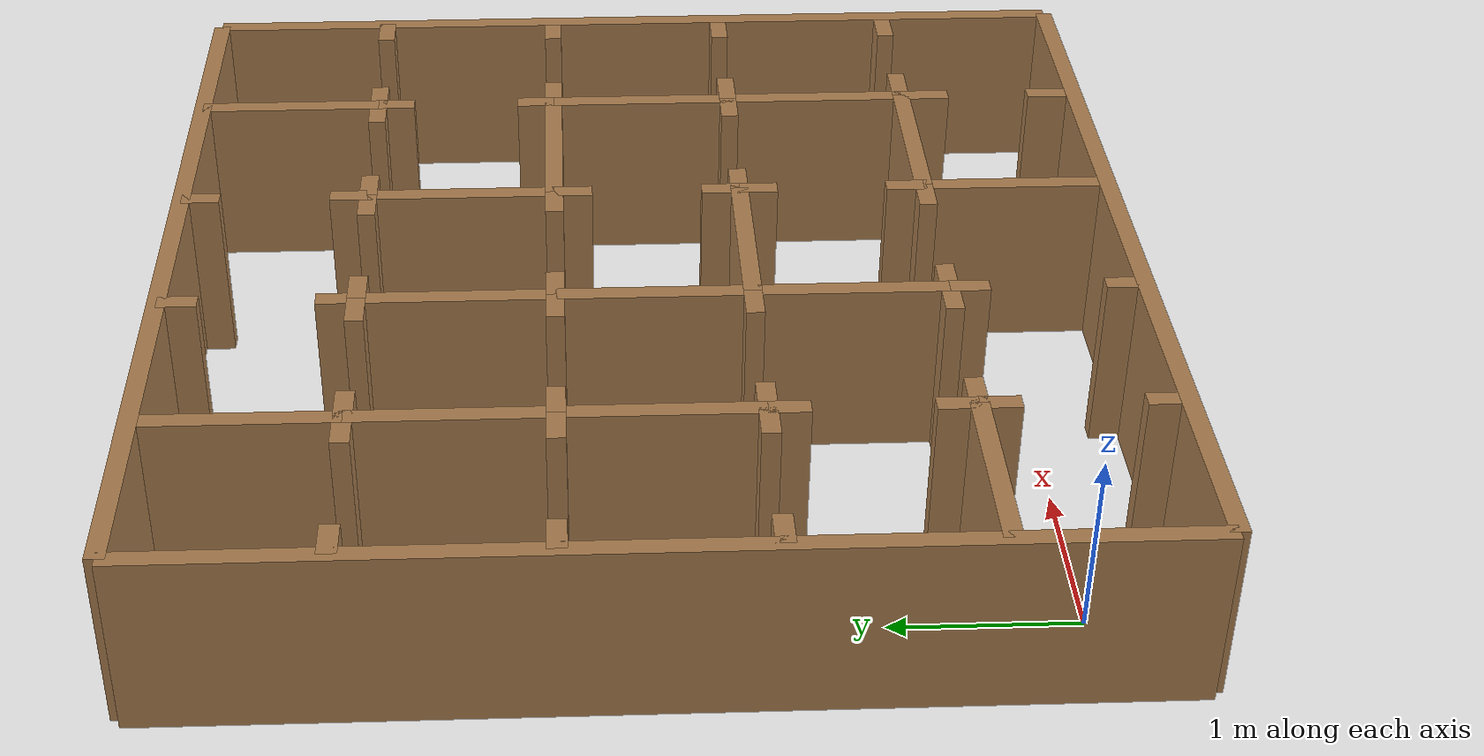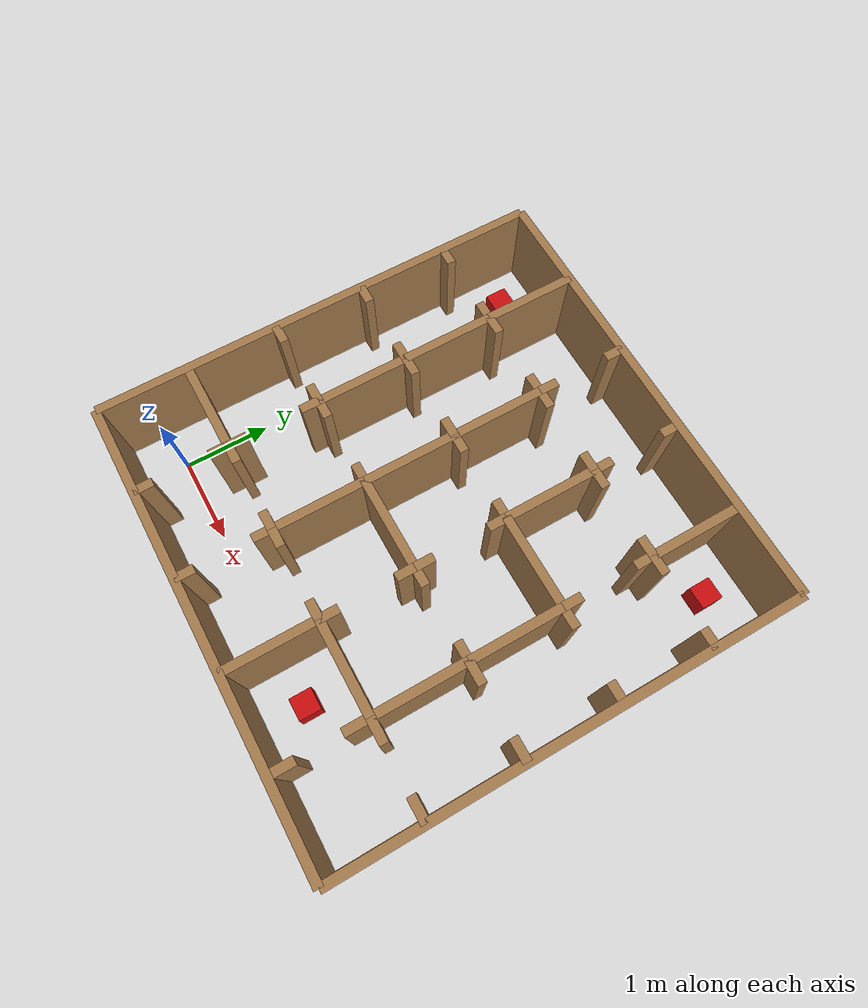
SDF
<sdf version="1.5">
 <world name="tars_borde_angostos">
  <physics type="ode">
   <max_step_size>0.001</max_step_size>
   <real_time_factor>1</real_time_factor>
   <real_time_update_rate>1000</real_time_update_rate>
   <gravity>0 0 -9.8</gravity>
  </physics>
  <plugin filename="gz-sim-physics-system" name="gz::sim::systems::Physics"/>
  <plugin filename="gz-sim-user-commands-system" name="gz::sim::systems::UserCommands"/>
  <plugin filename="gz-sim-scene-broadcaster-system" name="gz::sim::systems::SceneBroadcaster"/>
  <plugin filename="gz-sim-contact-system" name="gz::sim::systems::Contact"/>
  <plugin filename="gz-sim-sensors-system" name="gz::sim::systems::Sensors">
   <render_engine>ogre2</render_engine>
  </plugin>
  <plugin filename="gz-sim-imu-system" name="gz::sim::systems::Imu"/>
  <scene>
   <shadows>false</shadows>
   <ambient>0.2 0.2 0.2 1</ambient>
   <background>1 1 1 1</background>
   <grid>false</grid>
   <origin_visual>false</origin_visual>
  </scene>
  <include><uri>model://sun</uri></include>
  <light name="camera_spot_1_light" type="spot">
   <pose>-6 4 4 0 -1 -0.8</pose>
   <diffuse>0.5 0.5 0.5 1</diffuse>
   <specular>0.1 0.1 0.1 1</specular>
   <direction>0 0 -1</direction>
   <attenuation>
    <range>20</range>
    <constant>0.2</constant>
    <linear>0.01</linear>
    <quadratic>0.001</quadratic>
   </attenuation>
   <cast_shadows>0</cast_shadows>
   <spot><inner_angle>0.6</inner_angle><outer_angle>1</outer_angle><falloff>1</falloff></spot>
  </light>
  <light name="camera_spot_2_light" type="spot">
   <pose>5 -3 4 0 0.8 -0.6</pose>
   <diffuse>0.5 0.5 0.5 1</diffuse>
   <specular>0.1 0.1 0.1 1</specular>
   <direction>0 0 -1</direction>
   <attenuation>
    <range>20</range>
    <constant>0.3</constant>
    <linear>0.01</linear>
    <quadratic>0.001</quadratic>
   </attenuation>
   <cast_shadows>0</cast_shadows>
   <spot><inner_angle>0.6</inner_angle><outer_angle>1</outer_angle><falloff>1</falloff></spot>
  </light>
  <model name="paredes_borde">
   <static>true</static>
   <link name="pared_1">
    <pose>2.1 -0.525 0.5 0 0 0</pose>
    <collision name="collision"><geometry><box><size>5.250000000000001 0.1 1.0</size></box></geometry></collision>
    <visual name="visual">
     <geometry><box><size>5.250000000000001 0.1 1.0</size></box></geometry>
     <material><ambient>0.65 0.48 0.30 1</ambient><diffuse>0.65 0.48 0.30 1</diffuse></material>
    </visual>
   </link>
   <link name="pared_2">
    <pose>4.7250000000000005 2.1 0.5 0 0 0</pose>
    <collision name="collision"><geometry><box><size>0.1 5.250000000000001 1.0</size></box></geometry></collision>
    <visual name="visual">
     <geometry><box><size>0.1 5.250000000000001 1.0</size></box></geometry>
     <material><ambient>0.65 0.48 0.30 1</ambient><diffuse>0.65 0.48 0.30 1</diffuse></material>
    </visual>
   </link>
   <link name="pared_3">
    <pose>2.1 4.7250000000000005 0.5 0 0 0</pose>
    <collision name="collision"><geometry><box><size>5.250000000000001 0.1 1.0</size></box></geometry></collision>
    <visual name="visual">
     <geometry><box><size>5.250000000000001 0.1 1.0</size></box></geometry>
     <material><ambient>0.65 0.48 0.30 1</ambient><diffuse>0.65 0.48 0.30 1</diffuse></material>
    </visual>
   </link>
   <link name="pared_4">
    <pose>-0.525 2.1 0.5 0 0 0</pose>
    <collision name="collision"><geometry><box><size>0.1 5.250000000000001 1.0</size></box></geometry></collision>
    <visual name="visual">
     <geometry><box><size>0.1 5.250000000000001 1.0</size></box></geometry>
     <material><ambient>0.65 0.48 0.30 1</ambient><diffuse>0.65 0.48 0.30 1</diffuse></material>
    </visual>
   </link>
   <link name="pared_5">
    <pose>0.525 -0.4175 0.5 0 0 0</pose>
    <collision name="collision">
     <geometry><box><size>0.1 0.21500000000000002 1.0</size></box></geometry>
    </collision>
    <visual name="visual">
     <geometry><box><size>0.1 0.21500000000000002 1.0</size></box></geometry>
     <material><ambient>0.65 0.48 0.30 1</ambient><diffuse>0.65 0.48 0.30 1</diffuse></material>
    </visual>
   </link>
   <link name="pared_6">
    <pose>0.525 0.4175 0.5 0 0 0</pose>
    <collision name="collision">
     <geometry><box><size>0.1 0.21500000000000002 1.0</size></box></geometry>
    </collision>
    <visual name="visual">
     <geometry><box><size>0.1 0.21500000000000002 1.0</size></box></geometry>
     <material><ambient>0.65 0.48 0.30 1</ambient><diffuse>0.65 0.48 0.30 1</diffuse></material>
    </visual>
   </link>
   <link name="pared_7">
    <pose>0.0 0.525 0.5 0 0 0</pose>
    <collision name="collision"><geometry><box><size>1.05 0.1 1.0</size></box></geometry></collision>
    <visual name="visual">
     <geometry><box><size>1.05 0.1 1.0</size></box></geometry>
     <material><ambient>0.65 0.48 0.30 1</ambient><diffuse>0.65 0.48 0.30 1</diffuse></material>
    </visual>
   </link>
   <link name="pared_8">
    <pose>0.525 0.6325000000000001 0.5 0 0 0</pose>
    <collision name="collision">
     <geometry><box><size>0.1 0.21499999999999997 1.0</size></box></geometry>
    </collision>
    <visual name="visual">
     <geometry><box><size>0.1 0.21499999999999997 1.0</size></box></geometry>
     <material><ambient>0.65 0.48 0.30 1</ambient><diffuse>0.65 0.48 0.30 1</diffuse></material>
    </visual>
   </link>
   <link name="pared_9">
    <pose>0.525 1.4675000000000002 0.5 0 0 0</pose>
    <collision name="collision">
     <geometry><box><size>0.1 0.21500000000000008 1.0</size></box></geometry>
    </collision>
    <visual name="visual">
     <geometry><box><size>0.1 0.21500000000000008 1.0</size></box></geometry>
     <material><ambient>0.65 0.48 0.30 1</ambient><diffuse>0.65 0.48 0.30 1</diffuse></material>
    </visual>
   </link>
   <link name="pared_10">
    <pose>-0.4175 1.5750000000000002 0.5 0 0 0</pose>
    <collision name="collision">
     <geometry><box><size>0.21500000000000002 0.1 1.0</size></box></geometry>
    </collision>
    <visual name="visual">
     <geometry><box><size>0.21500000000000002 0.1 1.0</size></box></geometry>
     <material><ambient>0.65 0.48 0.30 1</ambient><diffuse>0.65 0.48 0.30 1</diffuse></material>
    </visual>
   </link>
   <link name="pared_11">
    <pose>0.4175 1.5750000000000002 0.5 0 0 0</pose>
    <collision name="collision">
     <geometry><box><size>0.21500000000000002 0.1 1.0</size></box></geometry>
    </collision>
    <visual name="visual">
     <geometry><box><size>0.21500000000000002 0.1 1.0</size></box></geometry>
     <material><ambient>0.65 0.48 0.30 1</ambient><diffuse>0.65 0.48 0.30 1</diffuse></material>
    </visual>
   </link>
   <link name="pared_12">
    <pose>0.525 2.1 0.5 0 0 0</pose>
    <collision name="collision">
     <geometry><box><size>0.1 1.0499999999999998 1.0</size></box></geometry>
    </collision>
    <visual name="visual">
     <geometry><box><size>0.1 1.0499999999999998 1.0</size></box></geometry>
     <material><ambient>0.65 0.48 0.30 1</ambient><diffuse>0.65 0.48 0.30 1</diffuse></material>
    </visual>
   </link>
   <link name="pared_13">
    <pose>-0.4175 2.625 0.5 0 0 0</pose>
    <collision name="collision">
     <geometry><box><size>0.21500000000000002 0.1 1.0</size></box></geometry>
    </collision>
    <visual name="visual">
     <geometry><box><size>0.21500000000000002 0.1 1.0</size></box></geometry>
     <material><ambient>0.65 0.48 0.30 1</ambient><diffuse>0.65 0.48 0.30 1</diffuse></material>
    </visual>
   </link>
   <link name="pared_14">
    <pose>0.4175 2.625 0.5 0 0 0</pose>
    <collision name="collision">
     <geometry><box><size>0.21500000000000002 0.1 1.0</size></box></geometry>
    </collision>
    <visual name="visual">
     <geometry><box><size>0.21500000000000002 0.1 1.0</size></box></geometry>
     <material><ambient>0.65 0.48 0.30 1</ambient><diffuse>0.65 0.48 0.30 1</diffuse></material>
    </visual>
   </link>
   <link name="pared_15">
    <pose>0.525 3.1500000000000004 0.5 0 0 0</pose>
    <collision name="collision">
     <geometry><box><size>0.1 1.0499999999999998 1.0</size></box></geometry>
    </collision>
    <visual name="visual">
     <geometry><box><size>0.1 1.0499999999999998 1.0</size></box></geometry>
     <material><ambient>0.65 0.48 0.30 1</ambient><diffuse>0.65 0.48 0.30 1</diffuse></material>
    </visual>
   </link>
   <link name="pared_16">
    <pose>-0.4175 3.6750000000000003 0.5 0 0 0</pose>
    <collision name="collision">
     <geometry><box><size>0.21500000000000002 0.1 1.0</size></box></geometry>
    </collision>
    <visual name="visual">
     <geometry><box><size>0.21500000000000002 0.1 1.0</size></box></geometry>
     <material><ambient>0.65 0.48 0.30 1</ambient><diffuse>0.65 0.48 0.30 1</diffuse></material>
    </visual>
   </link>
   <link name="pared_17">
    <pose>0.4175 3.6750000000000003 0.5 0 0 0</pose>
    <collision name="collision">
     <geometry><box><size>0.21500000000000002 0.1 1.0</size></box></geometry>
    </collision>
    <visual name="visual">
     <geometry><box><size>0.21500000000000002 0.1 1.0</size></box></geometry>
     <material><ambient>0.65 0.48 0.30 1</ambient><diffuse>0.65 0.48 0.30 1</diffuse></material>
    </visual>
   </link>
   <link name="pared_18">
    <pose>0.525 4.2 0.5 0 0 0</pose>
    <collision name="collision">
     <geometry><box><size>0.1 1.0500000000000003 1.0</size></box></geometry>
    </collision>
    <visual name="visual">
     <geometry><box><size>0.1 1.0500000000000003 1.0</size></box></geometry>
     <material><ambient>0.65 0.48 0.30 1</ambient><diffuse>0.65 0.48 0.30 1</diffuse></material>
    </visual>
   </link>
   <link name="pared_19">
    <pose>1.5750000000000002 -0.4175 0.5 0 0 0</pose>
    <collision name="collision">
     <geometry><box><size>0.1 0.21500000000000002 1.0</size></box></geometry>
    </collision>
    <visual name="visual">
     <geometry><box><size>0.1 0.21500000000000002 1.0</size></box></geometry>
     <material><ambient>0.65 0.48 0.30 1</ambient><diffuse>0.65 0.48 0.30 1</diffuse></material>
    </visual>
   </link>
   <link name="pared_20">
    <pose>1.5750000000000002 0.4175 0.5 0 0 0</pose>
    <collision name="collision">
     <geometry><box><size>0.1 0.21500000000000002 1.0</size></box></geometry>
    </collision>
    <visual name="visual">
     <geometry><box><size>0.1 0.21500000000000002 1.0</size></box></geometry>
     <material><ambient>0.65 0.48 0.30 1</ambient><diffuse>0.65 0.48 0.30 1</diffuse></material>
    </visual>
   </link>
   <link name="pared_21">
    <pose>0.6325000000000001 0.525 0.5 0 0 0</pose>
    <collision name="collision">
     <geometry><box><size>0.21499999999999997 0.1 1.0</size></box></geometry>
    </collision>
    <visual name="visual">
     <geometry><box><size>0.21499999999999997 0.1 1.0</size></box></geometry>
     <material><ambient>0.65 0.48 0.30 1</ambient><diffuse>0.65 0.48 0.30 1</diffuse></material>
    </visual>
   </link>
   <link name="pared_22">
    <pose>1.4675000000000002 0.525 0.5 0 0 0</pose>
    <collision name="collision">
     <geometry><box><size>0.21500000000000008 0.1 1.0</size></box></geometry>
    </collision>
    <visual name="visual">
     <geometry><box><size>0.21500000000000008 0.1 1.0</size></box></geometry>
     <material><ambient>0.65 0.48 0.30 1</ambient><diffuse>0.65 0.48 0.30 1</diffuse></material>
    </visual>
   </link>
   <link name="pared_23">
    <pose>1.5750000000000002 1.05 0.5 0 0 0</pose>
    <collision name="collision">
     <geometry><box><size>0.1 1.0500000000000003 1.0</size></box></geometry>
    </collision>
    <visual name="visual">
     <geometry><box><size>0.1 1.0500000000000003 1.0</size></box></geometry>
     <material><ambient>0.65 0.48 0.30 1</ambient><diffuse>0.65 0.48 0.30 1</diffuse></material>
    </visual>
   </link>
   <link name="pared_24">
    <pose>0.6325000000000001 1.5750000000000002 0.5 0 0 0</pose>
    <collision name="collision">
     <geometry><box><size>0.21499999999999997 0.1 1.0</size></box></geometry>
    </collision>
    <visual name="visual">
     <geometry><box><size>0.21499999999999997 0.1 1.0</size></box></geometry>
     <material><ambient>0.65 0.48 0.30 1</ambient><diffuse>0.65 0.48 0.30 1</diffuse></material>
    </visual>
   </link>
   <link name="pared_25">
    <pose>1.4675000000000002 1.5750000000000002 0.5 0 0 0</pose>
    <collision name="collision">
     <geometry><box><size>0.21500000000000008 0.1 1.0</size></box></geometry>
    </collision>
    <visual name="visual">
     <geometry><box><size>0.21500000000000008 0.1 1.0</size></box></geometry>
     <material><ambient>0.65 0.48 0.30 1</ambient><diffuse>0.65 0.48 0.30 1</diffuse></material>
    </visual>
   </link>
   <link name="pared_26">
    <pose>1.5750000000000002 2.1 0.5 0 0 0</pose>
    <collision name="collision">
     <geometry><box><size>0.1 1.0499999999999998 1.0</size></box></geometry>
    </collision>
    <visual name="visual">
     <geometry><box><size>0.1 1.0499999999999998 1.0</size></box></geometry>
     <material><ambient>0.65 0.48 0.30 1</ambient><diffuse>0.65 0.48 0.30 1</diffuse></material>
    </visual>
   </link>
   <link name="pared_27">
    <pose>0.6325000000000001 2.625 0.5 0 0 0</pose>
    <collision name="collision">
     <geometry><box><size>0.21499999999999997 0.1 1.0</size></box></geometry>
    </collision>
    <visual name="visual">
     <geometry><box><size>0.21499999999999997 0.1 1.0</size></box></geometry>
     <material><ambient>0.65 0.48 0.30 1</ambient><diffuse>0.65 0.48 0.30 1</diffuse></material>
    </visual>
   </link>
   <link name="pared_28">
    <pose>1.4675000000000002 2.625 0.5 0 0 0</pose>
    <collision name="collision">
     <geometry><box><size>0.21500000000000008 0.1 1.0</size></box></geometry>
    </collision>
    <visual name="visual">
     <geometry><box><size>0.21500000000000008 0.1 1.0</size></box></geometry>
     <material><ambient>0.65 0.48 0.30 1</ambient><diffuse>0.65 0.48 0.30 1</diffuse></material>
    </visual>
   </link>
   <link name="pared_29">
    <pose>1.5750000000000002 3.1500000000000004 0.5 0 0 0</pose>
    <collision name="collision">
     <geometry><box><size>0.1 1.0499999999999998 1.0</size></box></geometry>
    </collision>
    <visual name="visual">
     <geometry><box><size>0.1 1.0499999999999998 1.0</size></box></geometry>
     <material><ambient>0.65 0.48 0.30 1</ambient><diffuse>0.65 0.48 0.30 1</diffuse></material>
    </visual>
   </link>
   <link name="pared_30">
    <pose>0.6325000000000001 3.6750000000000003 0.5 0 0 0</pose>
    <collision name="collision">
     <geometry><box><size>0.21499999999999997 0.1 1.0</size></box></geometry>
    </collision>
    <visual name="visual">
     <geometry><box><size>0.21499999999999997 0.1 1.0</size></box></geometry>
     <material><ambient>0.65 0.48 0.30 1</ambient><diffuse>0.65 0.48 0.30 1</diffuse></material>
    </visual>
   </link>
   <link name="pared_31">
    <pose>1.4675000000000002 3.6750000000000003 0.5 0 0 0</pose>
    <collision name="collision">
     <geometry><box><size>0.21500000000000008 0.1 1.0</size></box></geometry>
    </collision>
    <visual name="visual">
     <geometry><box><size>0.21500000000000008 0.1 1.0</size></box></geometry>
     <material><ambient>0.65 0.48 0.30 1</ambient><diffuse>0.65 0.48 0.30 1</diffuse></material>
    </visual>
   </link>
   <link name="pared_32">
    <pose>1.5750000000000002 3.7825 0.5 0 0 0</pose>
    <collision name="collision">
     <geometry><box><size>0.1 0.21499999999999986 1.0</size></box></geometry>
    </collision>
    <visual name="visual">
     <geometry><box><size>0.1 0.21499999999999986 1.0</size></box></geometry>
     <material><ambient>0.65 0.48 0.30 1</ambient><diffuse>0.65 0.48 0.30 1</diffuse></material>
    </visual>
   </link>
   <link name="pared_33">
    <pose>1.5750000000000002 4.6175 0.5 0 0 0</pose>
    <collision name="collision">
     <geometry><box><size>0.1 0.21500000000000075 1.0</size></box></geometry>
    </collision>
    <visual name="visual">
     <geometry><box><size>0.1 0.21500000000000075 1.0</size></box></geometry>
     <material><ambient>0.65 0.48 0.30 1</ambient><diffuse>0.65 0.48 0.30 1</diffuse></material>
    </visual>
   </link>
   <link name="pared_34">
    <pose>2.625 0.0 0.5 0 0 0</pose>
    <collision name="collision"><geometry><box><size>0.1 1.05 1.0</size></box></geometry></collision>
    <visual name="visual">
     <geometry><box><size>0.1 1.05 1.0</size></box></geometry>
     <material><ambient>0.65 0.48 0.30 1</ambient><diffuse>0.65 0.48 0.30 1</diffuse></material>
    </visual>
   </link>
   <link name="pared_35">
    <pose>1.6825 0.525 0.5 0 0 0</pose>
    <collision name="collision">
     <geometry><box><size>0.21499999999999986 0.1 1.0</size></box></geometry>
    </collision>
    <visual name="visual">
     <geometry><box><size>0.21499999999999986 0.1 1.0</size></box></geometry>
     <material><ambient>0.65 0.48 0.30 1</ambient><diffuse>0.65 0.48 0.30 1</diffuse></material>
    </visual>
   </link>
   <link name="pared_36">
    <pose>2.5175 0.525 0.5 0 0 0</pose>
    <collision name="collision">
     <geometry><box><size>0.21499999999999986 0.1 1.0</size></box></geometry>
    </collision>
    <visual name="visual">
     <geometry><box><size>0.21499999999999986 0.1 1.0</size></box></geometry>
     <material><ambient>0.65 0.48 0.30 1</ambient><diffuse>0.65 0.48 0.30 1</diffuse></material>
    </visual>
   </link>
   <link name="pared_37">
    <pose>2.625 0.6325000000000001 0.5 0 0 0</pose>
    <collision name="collision">
     <geometry><box><size>0.1 0.21499999999999997 1.0</size></box></geometry>
    </collision>
    <visual name="visual">
     <geometry><box><size>0.1 0.21499999999999997 1.0</size></box></geometry>
     <material><ambient>0.65 0.48 0.30 1</ambient><diffuse>0.65 0.48 0.30 1</diffuse></material>
    </visual>
   </link>
   <link name="pared_38">
    <pose>2.625 1.4675000000000002 0.5 0 0 0</pose>
    <collision name="collision">
     <geometry><box><size>0.1 0.21500000000000008 1.0</size></box></geometry>
    </collision>
    <visual name="visual">
     <geometry><box><size>0.1 0.21500000000000008 1.0</size></box></geometry>
     <material><ambient>0.65 0.48 0.30 1</ambient><diffuse>0.65 0.48 0.30 1</diffuse></material>
    </visual>
   </link>
   <link name="pared_39">
    <pose>2.1 1.5750000000000002 0.5 0 0 0</pose>
    <collision name="collision">
     <geometry><box><size>1.0499999999999998 0.1 1.0</size></box></geometry>
    </collision>
    <visual name="visual">
     <geometry><box><size>1.0499999999999998 0.1 1.0</size></box></geometry>
     <material><ambient>0.65 0.48 0.30 1</ambient><diffuse>0.65 0.48 0.30 1</diffuse></material>
    </visual>
   </link>
   <link name="pared_40">
    <pose>2.625 1.6825 0.5 0 0 0</pose>
    <collision name="collision">
     <geometry><box><size>0.1 0.21499999999999986 1.0</size></box></geometry>
    </collision>
    <visual name="visual">
     <geometry><box><size>0.1 0.21499999999999986 1.0</size></box></geometry>
     <material><ambient>0.65 0.48 0.30 1</ambient><diffuse>0.65 0.48 0.30 1</diffuse></material>
    </visual>
   </link>
   <link name="pared_41">
    <pose>2.625 2.5175 0.5 0 0 0</pose>
    <collision name="collision">
     <geometry><box><size>0.1 0.21499999999999986 1.0</size></box></geometry>
    </collision>
    <visual name="visual">
     <geometry><box><size>0.1 0.21499999999999986 1.0</size></box></geometry>
     <material><ambient>0.65 0.48 0.30 1</ambient><diffuse>0.65 0.48 0.30 1</diffuse></material>
    </visual>
   </link>
   <link name="pared_42">
    <pose>1.6825 2.625 0.5 0 0 0</pose>
    <collision name="collision">
     <geometry><box><size>0.21499999999999986 0.1 1.0</size></box></geometry>
    </collision>
    <visual name="visual">
     <geometry><box><size>0.21499999999999986 0.1 1.0</size></box></geometry>
     <material><ambient>0.65 0.48 0.30 1</ambient><diffuse>0.65 0.48 0.30 1</diffuse></material>
    </visual>
   </link>
   <link name="pared_43">
    <pose>2.5175 2.625 0.5 0 0 0</pose>
    <collision name="collision">
     <geometry><box><size>0.21499999999999986 0.1 1.0</size></box></geometry>
    </collision>
    <visual name="visual">
     <geometry><box><size>0.21499999999999986 0.1 1.0</size></box></geometry>
     <material><ambient>0.65 0.48 0.30 1</ambient><diffuse>0.65 0.48 0.30 1</diffuse></material>
    </visual>
   </link>
   <link name="pared_44">
    <pose>2.625 3.1500000000000004 0.5 0 0 0</pose>
    <collision name="collision">
     <geometry><box><size>0.1 1.0499999999999998 1.0</size></box></geometry>
    </collision>
    <visual name="visual">
     <geometry><box><size>0.1 1.0499999999999998 1.0</size></box></geometry>
     <material><ambient>0.65 0.48 0.30 1</ambient><diffuse>0.65 0.48 0.30 1</diffuse></material>
    </visual>
   </link>
   <link name="pared_45">
    <pose>1.6825 3.6750000000000003 0.5 0 0 0</pose>
    <collision name="collision">
     <geometry><box><size>0.21499999999999986 0.1 1.0</size></box></geometry>
    </collision>
    <visual name="visual">
     <geometry><box><size>0.21499999999999986 0.1 1.0</size></box></geometry>
     <material><ambient>0.65 0.48 0.30 1</ambient><diffuse>0.65 0.48 0.30 1</diffuse></material>
    </visual>
   </link>
   <link name="pared_46">
    <pose>2.5175 3.6750000000000003 0.5 0 0 0</pose>
    <collision name="collision">
     <geometry><box><size>0.21499999999999986 0.1 1.0</size></box></geometry>
    </collision>
    <visual name="visual">
     <geometry><box><size>0.21499999999999986 0.1 1.0</size></box></geometry>
     <material><ambient>0.65 0.48 0.30 1</ambient><diffuse>0.65 0.48 0.30 1</diffuse></material>
    </visual>
   </link>
   <link name="pared_47">
    <pose>2.625 3.7825 0.5 0 0 0</pose>
    <collision name="collision">
     <geometry><box><size>0.1 0.21499999999999986 1.0</size></box></geometry>
    </collision>
    <visual name="visual">
     <geometry><box><size>0.1 0.21499999999999986 1.0</size></box></geometry>
     <material><ambient>0.65 0.48 0.30 1</ambient><diffuse>0.65 0.48 0.30 1</diffuse></material>
    </visual>
   </link>
   <link name="pared_48">
    <pose>2.625 4.6175 0.5 0 0 0</pose>
    <collision name="collision">
     <geometry><box><size>0.1 0.21500000000000075 1.0</size></box></geometry>
    </collision>
    <visual name="visual">
     <geometry><box><size>0.1 0.21500000000000075 1.0</size></box></geometry>
     <material><ambient>0.65 0.48 0.30 1</ambient><diffuse>0.65 0.48 0.30 1</diffuse></material>
    </visual>
   </link>
   <link name="pared_49">
    <pose>3.6750000000000003 -0.3825 0.5 0 0 0</pose>
    <collision name="collision">
     <geometry><box><size>0.1 0.28500000000000003 1.0</size></box></geometry>
    </collision>
    <visual name="visual">
     <geometry><box><size>0.1 0.28500000000000003 1.0</size></box></geometry>
     <material><ambient>0.65 0.48 0.30 1</ambient><diffuse>0.65 0.48 0.30 1</diffuse></material>
    </visual>
   </link>
   <link name="pared_50">
    <pose>3.6750000000000003 0.3825 0.5 0 0 0</pose>
    <collision name="collision">
     <geometry><box><size>0.1 0.28500000000000003 1.0</size></box></geometry>
    </collision>
    <visual name="visual">
     <geometry><box><size>0.1 0.28500000000000003 1.0</size></box></geometry>
     <material><ambient>0.65 0.48 0.30 1</ambient><diffuse>0.65 0.48 0.30 1</diffuse></material>
    </visual>
   </link>
   <link name="pared_51">
    <pose>3.1500000000000004 0.525 0.5 0 0 0</pose>
    <collision name="collision">
     <geometry><box><size>1.0499999999999998 0.1 1.0</size></box></geometry>
    </collision>
    <visual name="visual">
     <geometry><box><size>1.0499999999999998 0.1 1.0</size></box></geometry>
     <material><ambient>0.65 0.48 0.30 1</ambient><diffuse>0.65 0.48 0.30 1</diffuse></material>
    </visual>
   </link>
   <link name="pared_52">
    <pose>3.6750000000000003 1.05 0.5 0 0 0</pose>
    <collision name="collision">
     <geometry><box><size>0.1 1.0500000000000003 1.0</size></box></geometry>
    </collision>
    <visual name="visual">
     <geometry><box><size>0.1 1.0500000000000003 1.0</size></box></geometry>
     <material><ambient>0.65 0.48 0.30 1</ambient><diffuse>0.65 0.48 0.30 1</diffuse></material>
    </visual>
   </link>
   <link name="pared_53">
    <pose>2.7325000000000004 1.5750000000000002 0.5 0 0 0</pose>
    <collision name="collision">
     <geometry><box><size>0.21499999999999986 0.1 1.0</size></box></geometry>
    </collision>
    <visual name="visual">
     <geometry><box><size>0.21499999999999986 0.1 1.0</size></box></geometry>
     <material><ambient>0.65 0.48 0.30 1</ambient><diffuse>0.65 0.48 0.30 1</diffuse></material>
    </visual>
   </link>
   <link name="pared_54">
    <pose>3.5675000000000003 1.5750000000000002 0.5 0 0 0</pose>
    <collision name="collision">
     <geometry><box><size>0.21499999999999986 0.1 1.0</size></box></geometry>
    </collision>
    <visual name="visual">
     <geometry><box><size>0.21499999999999986 0.1 1.0</size></box></geometry>
     <material><ambient>0.65 0.48 0.30 1</ambient><diffuse>0.65 0.48 0.30 1</diffuse></material>
    </visual>
   </link>
   <link name="pared_55">
    <pose>3.6750000000000003 2.1 0.5 0 0 0</pose>
    <collision name="collision">
     <geometry><box><size>0.1 1.0499999999999998 1.0</size></box></geometry>
    </collision>
    <visual name="visual">
     <geometry><box><size>0.1 1.0499999999999998 1.0</size></box></geometry>
     <material><ambient>0.65 0.48 0.30 1</ambient><diffuse>0.65 0.48 0.30 1</diffuse></material>
    </visual>
   </link>
   <link name="pared_56">
    <pose>3.1500000000000004 2.625 0.5 0 0 0</pose>
    <collision name="collision">
     <geometry><box><size>1.0499999999999998 0.1 1.0</size></box></geometry>
    </collision>
    <visual name="visual">
     <geometry><box><size>1.0499999999999998 0.1 1.0</size></box></geometry>
     <material><ambient>0.65 0.48 0.30 1</ambient><diffuse>0.65 0.48 0.30 1</diffuse></material>
    </visual>
   </link>
   <link name="pared_57">
    <pose>3.6750000000000003 2.7325000000000004 0.5 0 0 0</pose>
    <collision name="collision">
     <geometry><box><size>0.1 0.21499999999999986 1.0</size></box></geometry>
    </collision>
    <visual name="visual">
     <geometry><box><size>0.1 0.21499999999999986 1.0</size></box></geometry>
     <material><ambient>0.65 0.48 0.30 1</ambient><diffuse>0.65 0.48 0.30 1</diffuse></material>
    </visual>
   </link>
   <link name="pared_58">
    <pose>3.6750000000000003 3.5675000000000003 0.5 0 0 0</pose>
    <collision name="collision">
     <geometry><box><size>0.1 0.21499999999999986 1.0</size></box></geometry>
    </collision>
    <visual name="visual">
     <geometry><box><size>0.1 0.21499999999999986 1.0</size></box></geometry>
     <material><ambient>0.65 0.48 0.30 1</ambient><diffuse>0.65 0.48 0.30 1</diffuse></material>
    </visual>
   </link>
   <link name="pared_59">
    <pose>2.7325000000000004 3.6750000000000003 0.5 0 0 0</pose>
    <collision name="collision">
     <geometry><box><size>0.21499999999999986 0.1 1.0</size></box></geometry>
    </collision>
    <visual name="visual">
     <geometry><box><size>0.21499999999999986 0.1 1.0</size></box></geometry>
     <material><ambient>0.65 0.48 0.30 1</ambient><diffuse>0.65 0.48 0.30 1</diffuse></material>
    </visual>
   </link>
   <link name="pared_60">
    <pose>3.5675000000000003 3.6750000000000003 0.5 0 0 0</pose>
    <collision name="collision">
     <geometry><box><size>0.21499999999999986 0.1 1.0</size></box></geometry>
    </collision>
    <visual name="visual">
     <geometry><box><size>0.21499999999999986 0.1 1.0</size></box></geometry>
     <material><ambient>0.65 0.48 0.30 1</ambient><diffuse>0.65 0.48 0.30 1</diffuse></material>
    </visual>
   </link>
   <link name="pared_61">
    <pose>3.6750000000000003 4.2 0.5 0 0 0</pose>
    <collision name="collision">
     <geometry><box><size>0.1 1.0500000000000003 1.0</size></box></geometry>
    </collision>
    <visual name="visual">
     <geometry><box><size>0.1 1.0500000000000003 1.0</size></box></geometry>
     <material><ambient>0.65 0.48 0.30 1</ambient><diffuse>0.65 0.48 0.30 1</diffuse></material>
    </visual>
   </link>
   <link name="pared_62">
    <pose>3.8125 0.525 0.5 0 0 0</pose>
    <collision name="collision">
     <geometry><box><size>0.2749999999999999 0.1 1.0</size></box></geometry>
    </collision>
    <visual name="visual">
     <geometry><box><size>0.2749999999999999 0.1 1.0</size></box></geometry>
     <material><ambient>0.65 0.48 0.30 1</ambient><diffuse>0.65 0.48 0.30 1</diffuse></material>
    </visual>
   </link>
   <link name="pared_63">
    <pose>4.5875 0.525 0.5 0 0 0</pose>
    <collision name="collision">
     <geometry><box><size>0.27500000000000036 0.1 1.0</size></box></geometry>
    </collision>
    <visual name="visual">
     <geometry><box><size>0.27500000000000036 0.1 1.0</size></box></geometry>
     <material><ambient>0.65 0.48 0.30 1</ambient><diffuse>0.65 0.48 0.30 1</diffuse></material>
    </visual>
   </link>
   <link name="pared_64">
    <pose>3.8025 1.5750000000000002 0.5 0 0 0</pose>
    <collision name="collision">
     <geometry><box><size>0.2549999999999999 0.1 1.0</size></box></geometry>
    </collision>
    <visual name="visual">
     <geometry><box><size>0.2549999999999999 0.1 1.0</size></box></geometry>
     <material><ambient>0.65 0.48 0.30 1</ambient><diffuse>0.65 0.48 0.30 1</diffuse></material>
    </visual>
   </link>
   <link name="pared_65">
    <pose>4.5975 1.5750000000000002 0.5 0 0 0</pose>
    <collision name="collision">
     <geometry><box><size>0.2549999999999999 0.1 1.0</size></box></geometry>
    </collision>
    <visual name="visual">
     <geometry><box><size>0.2549999999999999 0.1 1.0</size></box></geometry>
     <material><ambient>0.65 0.48 0.30 1</ambient><diffuse>0.65 0.48 0.30 1</diffuse></material>
    </visual>
   </link>
   <link name="pared_66">
    <pose>3.7925000000000004 2.625 0.5 0 0 0</pose>
    <collision name="collision">
     <geometry><box><size>0.23499999999999988 0.1 1.0</size></box></geometry>
    </collision>
    <visual name="visual">
     <geometry><box><size>0.23499999999999988 0.1 1.0</size></box></geometry>
     <material><ambient>0.65 0.48 0.30 1</ambient><diffuse>0.65 0.48 0.30 1</diffuse></material>
    </visual>
   </link>
   <link name="pared_67">
    <pose>4.6075 2.625 0.5 0 0 0</pose>
    <collision name="collision">
     <geometry><box><size>0.23500000000000032 0.1 1.0</size></box></geometry>
    </collision>
    <visual name="visual">
     <geometry><box><size>0.23500000000000032 0.1 1.0</size></box></geometry>
     <material><ambient>0.65 0.48 0.30 1</ambient><diffuse>0.65 0.48 0.30 1</diffuse></material>
    </visual>
   </link>
   <link name="pared_68">
    <pose>3.7825 3.6750000000000003 0.5 0 0 0</pose>
    <collision name="collision">
     <geometry><box><size>0.21499999999999986 0.1 1.0</size></box></geometry>
    </collision>
    <visual name="visual">
     <geometry><box><size>0.21499999999999986 0.1 1.0</size></box></geometry>
     <material><ambient>0.65 0.48 0.30 1</ambient><diffuse>0.65 0.48 0.30 1</diffuse></material>
    </visual>
   </link>
   <link name="pared_69">
    <pose>4.6175 3.6750000000000003 0.5 0 0 0</pose>
    <collision name="collision">
     <geometry><box><size>0.21500000000000075 0.1 1.0</size></box></geometry>
    </collision>
    <visual name="visual">
     <geometry><box><size>0.21500000000000075 0.1 1.0</size></box></geometry>
     <material><ambient>0.65 0.48 0.30 1</ambient><diffuse>0.65 0.48 0.30 1</diffuse></material>
    </visual>
   </link>
  </model>
  <model name="marcas_color">
   <static>true</static>
   <link name="cuadrado_rojo_1">
    <pose>3.1500000000000004 0.0 .15 0 0 0</pose>
    <collision name="collision"><geometry><box><size>0.25 0.25 0.3</size></box></geometry></collision>
    <visual name="visual">
     <geometry><box><size>0.25 0.25 0.3</size></box></geometry>
     <material>
      <ambient>0.8 0.05 0.05 1</ambient>
      <diffuse>0.8 0.05 0.05 1</diffuse>
      <specular>0.1 0.1 0.1 1</specular>
     </material>
    </visual>
   </link>
   <link name="cuadrado_rojo_2">
    <pose>4.2 4.2 .15 0 0 0</pose>
    <collision name="collision"><geometry><box><size>0.25 0.25 0.3</size></box></geometry></collision>
    <visual name="visual">
     <geometry><box><size>0.25 0.25 0.3</size></box></geometry>
     <material>
      <ambient>0.8 0.05 0.05 1</ambient>
      <diffuse>0.8 0.05 0.05 1</diffuse>
      <specular>0.1 0.1 0.1 1</specular>
     </material>
    </visual>
   </link>
   <link name="cuadrado_rojo_3">
    <pose>0.0 4.2 .15 0 0 0</pose>
    <collision name="collision"><geometry><box><size>0.25 0.25 0.3</size></box></geometry></collision>
    <visual name="visual">
     <geometry><box><size>0.25 0.25 0.3</size></box></geometry>
     <material>
      <ambient>0.8 0.05 0.05 1</ambient>
      <diffuse>0.8 0.05 0.05 1</diffuse>
      <specular>0.1 0.1 0.1 1</specular>
     </material>
    </visual>
   </link>
  </model>
 </world>
</sdf>
